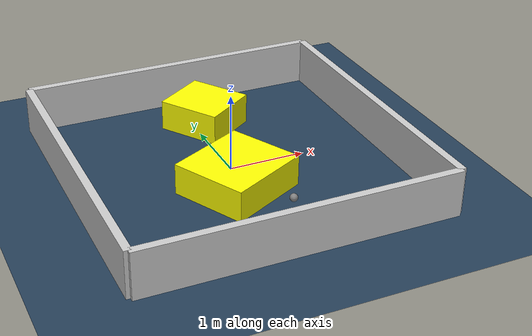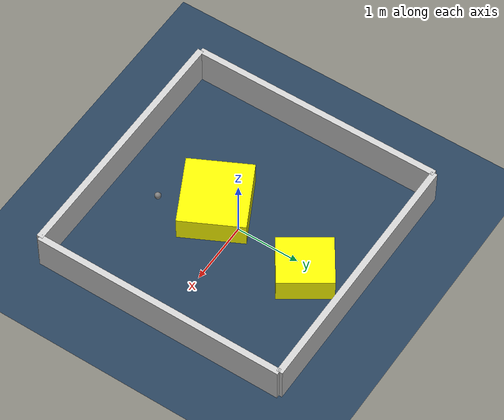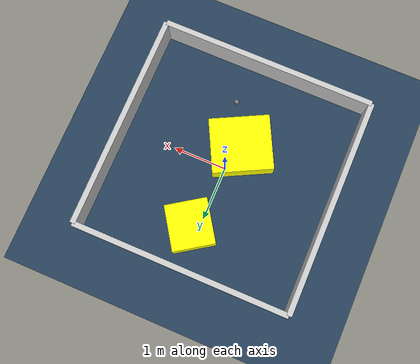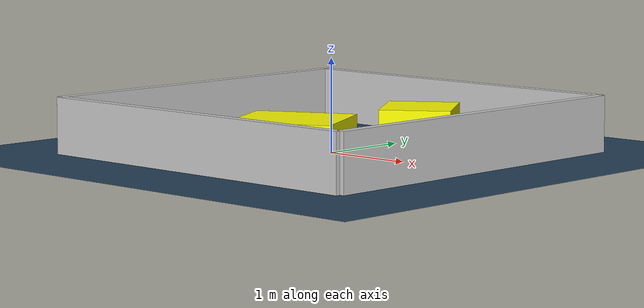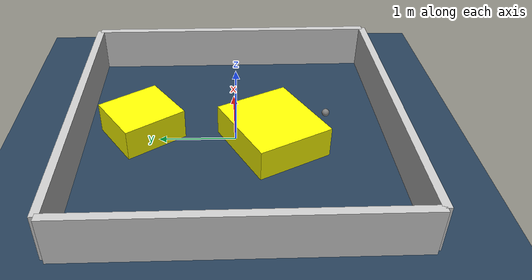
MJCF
<?xml version="1.0" ?>
<mujoco model="generated_environment">
  <option timestep="0.01" integrator="RK4" cone="elliptic"/>
  <default>
    <geom density="1"/>
  </default>
  <asset>
    <texture builtin="gradient" height="3072" rgb1="0.3 0.5 0.7" rgb2="0 0 0" type="skybox" width="512"/>
    <texture builtin="checker" height="300" mark="edge" markrgb="0.8 0.8 0.8" name="groundplane" rgb1="0.2 0.3 0.4" rgb2="0.1 0.2 0.3" type="2d" width="300"/>
    <material name="groundplane" reflectance="0.2" texrepeat="5 5" texture="groundplane" texuniform="true"/>
    <material name="robot" rgba="0.0 1.0 0.0 1"/>
  </asset>
  <worldbody>
    <light dir="0 0 -1" directional="true" pos="0 0 1.5"/>
    <geom condim="4" friction="1.0 0.005 0.001" material="groundplane" name="floor" size="0 0 0.05" type="plane"/>
    <body name="walls">
      <geom name="wall_1" condim="4" pos="-2.0 0.0 0.3" rgba="0.800000011920929 0.800000011920929 0.800000011920929 1.0" size="0.05 2.0 0.3" type="box"/>
      <geom name="wall_2" condim="4" pos="2.0 0.0 0.3" rgba="0.800000011920929 0.800000011920929 0.800000011920929 1.0" size="0.05 2.0 0.3" type="box"/>
      <geom name="wall_3" condim="4" pos="0.0 -2.0 0.3" rgba="0.800000011920929 0.800000011920929 0.800000011920929 1.0" size="2.0 0.05 0.3" type="box"/>
      <geom name="wall_4" condim="4" pos="0.0 2.0 0.3" rgba="0.800000011920929 0.800000011920929 0.800000011920929 1.0" size="2.0 0.05 0.3" type="box"/>
    </body>
    <body name="robot">
      <joint name="joint_x" type="slide" pos="0 0 0" axis="1 0 0"/>
      <joint name="joint_y" type="slide" pos="0 0 0" axis="0 1 0"/>
      <geom name="robot" type="sphere" pos="0.26899937017168174 -1.2034156076147342 0.2" size="0.05" mass="5." friction="1.0 0.005 0.0001" condim="4"/>
      <site name="sensor_ball"/>
    </body>
    <body name="obstacle_1_movable">
      <geom name="obstacle_1_movable" condim="4" pos="0.15368642735987548 1.2213899331714044 0.2" euler="0 0 123.87748819501992" friction="1.0 0.005 0.001" rgba="1 1 0 1" size="0.41712679121287055 0.38760345585977024 0.2" type="box" mass="0.1"/>
      <joint type="free"/>
    </body>
    <body name="obstacle_2_movable">
      <geom name="obstacle_2_movable" condim="4" pos="-0.11705143887118497 -0.4639175604357224 0.2" euler="0 0 116.88762271458877" friction="1.0 0.005 0.001" rgba="1 1 0 1" size="0.5035769032175004 0.554385941793061 0.2" type="box" mass="0.1"/>
      <joint type="free"/>
    </body>
  </worldbody>
  <actuator>
    <motor name="actuator_x" joint="joint_x" gear="1" ctrlrange="-1 1"/>
    <motor name="actuator_y" joint="joint_y" gear="1" ctrlrange="-1 1"/>
  </actuator>
</mujoco>
